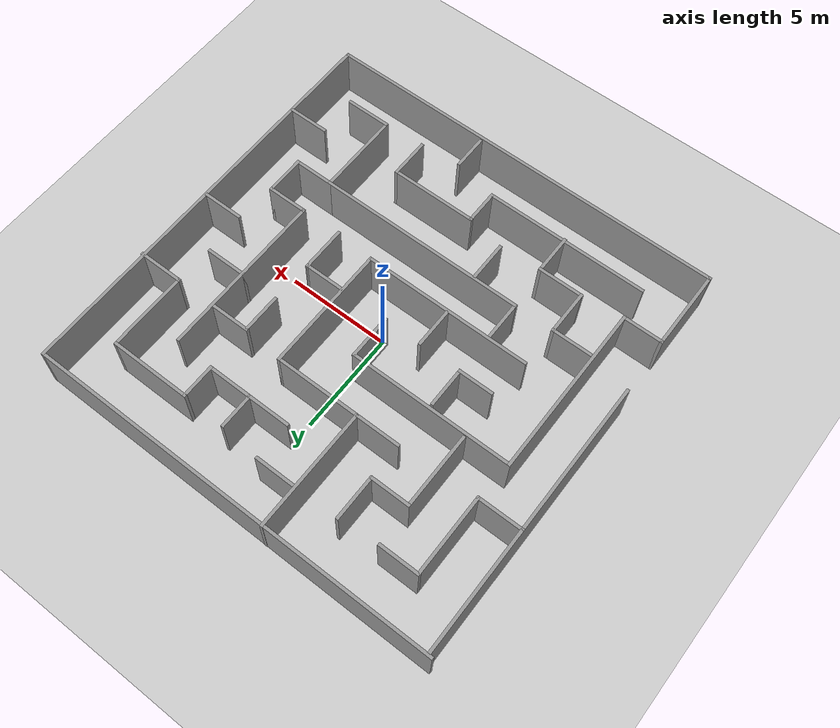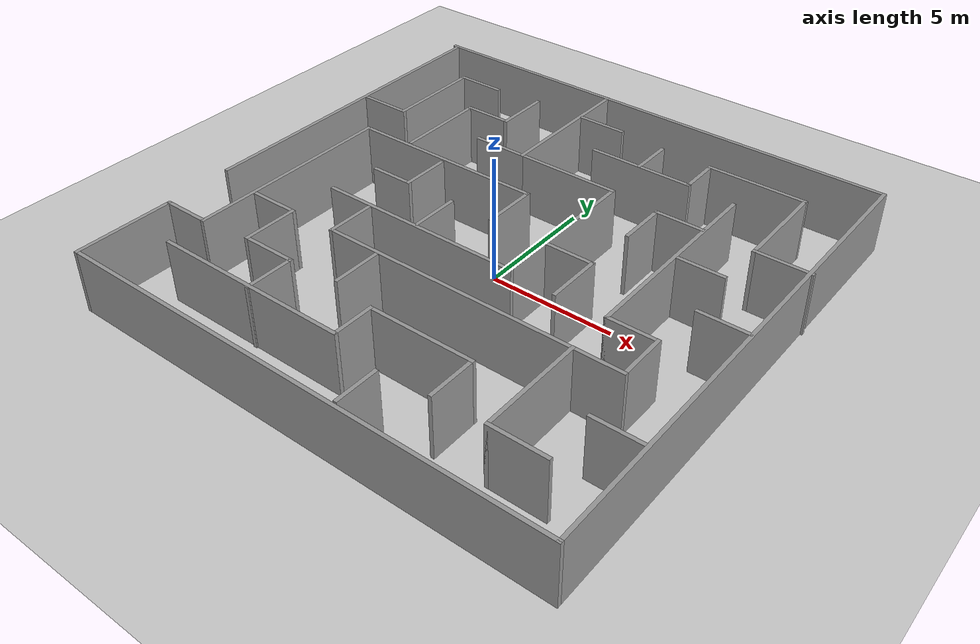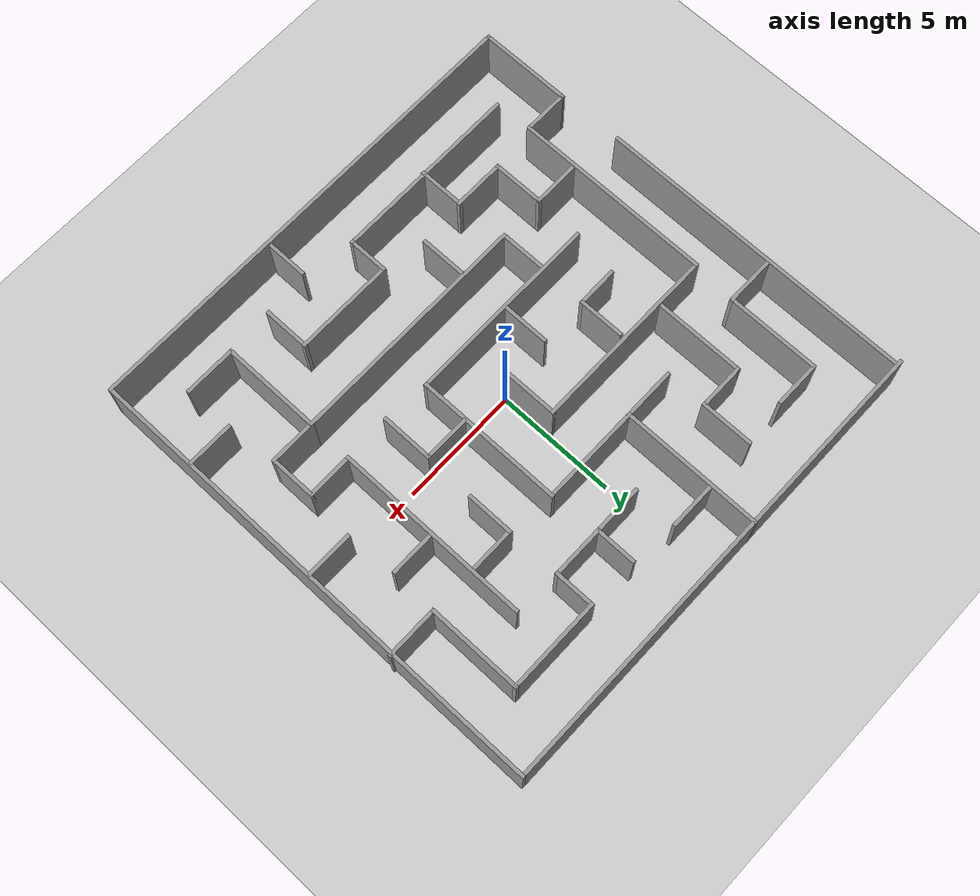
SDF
<sdf version="1.4">
   <world name="default">

     <scene>
       <ambient>0.4 0.4 0.4 1</ambient>
       <background>0.7 0.7 0.7 1</background>
       <shadows>true</shadows>
     </scene>

     <!-- A global light source -->
     <include>
       <uri>model://sun</uri>
     </include>

     <!-- A ground plane -->
     <include>
       <uri>model://ground_plane</uri>
     </include>

     <!-- Maze -->
     <include>
       <uri>model://complex_maze4</uri>
     </include>

     <physics type="ode">
       <real_time_update_rate>1000.0</real_time_update_rate>
       <max_step_size>0.001</max_step_size>
       <real_time_factor>1</real_time_factor>
       <ode>
         <solver>
           <type>quick</type>
           <iters>150</iters>
           <precon_iters>0</precon_iters>
           <sor>1.400000</sor>
           <use_dynamic_moi_rescaling>1</use_dynamic_moi_rescaling>
         </solver>
         <constraints>
           <cfm>0.00001</cfm>
           <erp>0.2</erp>
           <contact_max_correcting_vel>2000.000000</contact_max_correcting_vel>
           <contact_surface_layer>0.01000</contact_surface_layer>
         </constraints>
       </ode>
     </physics>

   </world>

 </sdf>

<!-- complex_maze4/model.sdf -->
<sdf version='1.7'>
  <model name='Untitled'>
    <pose>-0.041824 -0.00141 0 0 -0 0</pose>
    <link name='Wall_0'>
      <collision name='Wall_0_Collision'>
        <geometry>
          <box>
            <size>20.25 0.15 2.5</size>
          </box>
        </geometry>
        <pose>0 0 1.25 0 -0 0</pose>
      </collision>
      <visual name='Wall_0_Visual'>
        <pose>0 0 1.25 0 -0 0</pose>
        <geometry>
          <box>
            <size>20.25 0.15 2.5</size>
          </box>
        </geometry>
        <material>
          <script>
            <uri>file://media/materials/scripts/gazebo.material</uri>
            <name>Gazebo/Grey</name>
          </script>
          <ambient>1 1 1 1</ambient>
        </material>
        <meta>
          <layer>0</layer>
        </meta>
      </visual>
      <pose>-0.035221 10.0428 0 0 -0 0</pose>
    </link>
    <link name='Wall_1'>
      <collision name='Wall_1_Collision'>
        <geometry>
          <box>
            <size>20.25 0.15 2.5</size>
          </box>
        </geometry>
        <pose>0 0 1.25 0 -0 0</pose>
      </collision>
      <visual name='Wall_1_Visual'>
        <pose>0 0 1.25 0 -0 0</pose>
        <geometry>
          <box>
            <size>20.25 0.15 2.5</size>
          </box>
        </geometry>
        <material>
          <script>
            <uri>file://media/materials/scripts/gazebo.material</uri>
            <name>Gazebo/Grey</name>
          </script>
          <ambient>1 1 1 1</ambient>
        </material>
        <meta>
          <layer>0</layer>
        </meta>
      </visual>
      <pose>10.0148 -0.007195 0 0 -0 -1.5708</pose>
    </link>
    <link name='Wall_100'>
      <collision name='Wall_100_Collision'>
        <geometry>
          <box>
            <size>2.25 0.15 2.5</size>
          </box>
        </geometry>
        <pose>0 0 1.25 0 -0 0</pose>
      </collision>
      <visual name='Wall_100_Visual'>
        <pose>0 0 1.25 0 -0 0</pose>
        <geometry>
          <box>
            <size>2.25 0.15 2.5</size>
          </box>
        </geometry>
        <material>
          <script>
            <uri>file://media/materials/scripts/gazebo.material</uri>
            <name>Gazebo/Grey</name>
          </script>
          <ambient>1 1 1 1</ambient>
        </material>
        <meta>
          <layer>0</layer>
        </meta>
      </visual>
      <pose>-8.8738 4.01606 0 0 -0 3.14159</pose>
    </link>
    <link name='Wall_102'>
      <collision name='Wall_102_Collision'>
        <geometry>
          <box>
            <size>2 0.15 2.5</size>
          </box>
        </geometry>
        <pose>0 0 1.25 0 -0 0</pose>
      </collision>
      <visual name='Wall_102_Visual'>
        <pose>0 0 1.25 0 -0 0</pose>
        <geometry>
          <box>
            <size>2 0.15 2.5</size>
          </box>
        </geometry>
        <material>
          <script>
            <uri>file://media/materials/scripts/gazebo.material</uri>
            <name>Gazebo/Grey</name>
          </script>
          <ambient>1 1 1 1</ambient>
        </material>
        <meta>
          <layer>0</layer>
        </meta>
      </visual>
      <pose>-4.0198 0.985995 0 0 -0 -1.5708</pose>
    </link>
    <link name='Wall_103'>
      <collision name='Wall_103_Collision'>
        <geometry>
          <box>
            <size>1.75 0.15 2.5</size>
          </box>
        </geometry>
        <pose>0 0 1.25 0 -0 0</pose>
      </collision>
      <visual name='Wall_103_Visual'>
        <pose>0 0 1.25 0 -0 0</pose>
        <geometry>
          <box>
            <size>1.75 0.15 2.5</size>
          </box>
        </geometry>
        <material>
          <script>
            <uri>file://media/materials/scripts/gazebo.material</uri>
            <name>Gazebo/Grey</name>
          </script>
          <ambient>1 1 1 1</ambient>
        </material>
        <meta>
          <layer>0</layer>
        </meta>
      </visual>
      <pose>-4.8198 0.060995 0 0 -0 3.14159</pose>
    </link>
    <link name='Wall_105'>
      <collision name='Wall_105_Collision'>
        <geometry>
          <box>
            <size>1.75 0.15 2.5</size>
          </box>
        </geometry>
        <pose>0 0 1.25 0 -0 0</pose>
      </collision>
      <visual name='Wall_105_Visual'>
        <pose>0 0 1.25 0 -0 0</pose>
        <geometry>
          <box>
            <size>1.75 0.15 2.5</size>
          </box>
        </geometry>
        <material>
          <script>
            <uri>file://media/materials/scripts/gazebo.material</uri>
            <name>Gazebo/Grey</name>
          </script>
          <ambient>1 1 1 1</ambient>
        </material>
        <meta>
          <layer>0</layer>
        </meta>
      </visual>
      <pose>2.12136 -9.05955 0 0 -0 1.5708</pose>
    </link>
    <link name='Wall_12'>
      <collision name='Wall_12_Collision'>
        <geometry>
          <box>
            <size>2.25 0.15 2.5</size>
          </box>
        </geometry>
        <pose>0 0 1.25 0 -0 0</pose>
      </collision>
      <visual name='Wall_12_Visual'>
        <pose>0 0 1.25 0 -0 0</pose>
        <geometry>
          <box>
            <size>2.25 0.15 2.5</size>
          </box>
        </geometry>
        <material>
          <script>
            <uri>file://media/materials/scripts/gazebo.material</uri>
            <name>Gazebo/Grey</name>
          </script>
          <ambient>1 1 1 1</ambient>
        </material>
        <meta>
          <layer>0</layer>
        </meta>
      </visual>
      <pose>9.03522 3.99702 0 0 -0 3.14159</pose>
    </link>
    <link name='Wall_13'>
      <collision name='Wall_13_Collision'>
        <geometry>
          <box>
            <size>4 0.15 2.5</size>
          </box>
        </geometry>
        <pose>0 0 1.25 0 -0 0</pose>
      </collision>
      <visual name='Wall_13_Visual'>
        <pose>0 0 1.25 0 -0 0</pose>
        <geometry>
          <box>
            <size>4 0.15 2.5</size>
          </box>
        </geometry>
        <material>
          <script>
            <uri>file://media/materials/scripts/gazebo.material</uri>
            <name>Gazebo/Grey</name>
          </script>
          <ambient>1 1 1 1</ambient>
        </material>
        <meta>
          <layer>0</layer>
        </meta>
      </visual>
      <pose>7.98522 5.92202 0 0 -0 1.5708</pose>
    </link>
    <link name='Wall_14'>
      <collision name='Wall_14_Collision'>
        <geometry>
          <box>
            <size>4 0.15 2.5</size>
          </box>
        </geometry>
        <pose>0 0 1.25 0 -0 0</pose>
      </collision>
      <visual name='Wall_14_Visual'>
        <pose>0 0 1.25 0 -0 0</pose>
        <geometry>
          <box>
            <size>4 0.15 2.5</size>
          </box>
        </geometry>
        <material>
          <script>
            <uri>file://media/materials/scripts/gazebo.material</uri>
            <name>Gazebo/Grey</name>
          </script>
          <ambient>1 1 1 1</ambient>
        </material>
        <meta>
          <layer>0</layer>
        </meta>
      </visual>
      <pose>6.06022 7.84702 0 0 -0 3.14159</pose>
    </link>
    <link name='Wall_15'>
      <collision name='Wall_15_Collision'>
        <geometry>
          <box>
            <size>1.75 0.15 2.5</size>
          </box>
        </geometry>
        <pose>0 0 1.25 0 -0 0</pose>
      </collision>
      <visual name='Wall_15_Visual'>
        <pose>0 0 1.25 0 -0 0</pose>
        <geometry>
          <box>
            <size>1.75 0.15 2.5</size>
          </box>
        </geometry>
        <material>
          <script>
            <uri>file://media/materials/scripts/gazebo.material</uri>
            <name>Gazebo/Grey</name>
          </script>
          <ambient>1 1 1 1</ambient>
        </material>
        <meta>
          <layer>0</layer>
        </meta>
      </visual>
      <pose>4.13522 7.04702 0 0 -0 -1.5708</pose>
    </link>
    <link name='Wall_16'>
      <collision name='Wall_16_Collision'>
        <geometry>
          <box>
            <size>4.25 0.15 2.5</size>
          </box>
        </geometry>
        <pose>0 0 1.25 0 -0 0</pose>
      </collision>
      <visual name='Wall_16_Visual'>
        <pose>0 0 1.25 0 -0 0</pose>
        <geometry>
          <box>
            <size>4.25 0.15 2.5</size>
          </box>
        </geometry>
        <material>
          <script>
            <uri>file://media/materials/scripts/gazebo.material</uri>
            <name>Gazebo/Grey</name>
          </script>
          <ambient>1 1 1 1</ambient>
        </material>
        <meta>
          <layer>0</layer>
        </meta>
      </visual>
      <pose>2.08522 6.24702 0 0 -0 3.14159</pose>
    </link>
    <link name='Wall_2'>
      <collision name='Wall_2_Collision'>
        <geometry>
          <box>
            <size>20 0.15 2.5</size>
          </box>
        </geometry>
        <pose>0 0 1.25 0 -0 0</pose>
      </collision>
      <visual name='Wall_2_Visual'>
        <pose>0 0 1.25 0 -0 0</pose>
        <geometry>
          <box>
            <size>20 0.15 2.5</size>
          </box>
        </geometry>
        <material>
          <script>
            <uri>file://media/materials/scripts/gazebo.material</uri>
            <name>Gazebo/Grey</name>
          </script>
          <ambient>1 1 1 1</ambient>
        </material>
        <meta>
          <layer>0</layer>
        </meta>
      </visual>
      <pose>0.089779 -10.0572 0 0 -0 3.14159</pose>
    </link>
    <link name='Wall_23'>
      <collision name='Wall_23_Collision'>
        <geometry>
          <box>
            <size>1.75 0.15 2.5</size>
          </box>
        </geometry>
        <pose>0 0 1.25 0 -0 0</pose>
      </collision>
      <visual name='Wall_23_Visual'>
        <pose>0 0 1.25 0 -0 0</pose>
        <geometry>
          <box>
            <size>1.75 0.15 2.5</size>
          </box>
        </geometry>
        <material>
          <script>
            <uri>file://media/materials/scripts/gazebo.material</uri>
            <name>Gazebo/Grey</name>
          </script>
          <ambient>1 1 1 1</ambient>
        </material>
        <meta>
          <layer>0</layer>
        </meta>
      </visual>
      <pose>2.0237 7.06909 0 0 -0 1.5708</pose>
    </link>
    <link name='Wall_25'>
      <collision name='Wall_25_Collision'>
        <geometry>
          <box>
            <size>6 0.15 2.5</size>
          </box>
        </geometry>
        <pose>0 0 1.25 0 -0 0</pose>
      </collision>
      <visual name='Wall_25_Visual'>
        <pose>0 0 1.25 0 -0 0</pose>
        <geometry>
          <box>
            <size>6 0.15 2.5</size>
          </box>
        </geometry>
        <material>
          <script>
            <uri>file://media/materials/scripts/gazebo.material</uri>
            <name>Gazebo/Grey</name>
          </script>
          <ambient>1 1 1 1</ambient>
        </material>
        <meta>
          <layer>0</layer>
        </meta>
      </visual>
      <pose>-1.91893 7.1322 0 0 -0 -1.5708</pose>
    </link>
    <link name='Wall_26'>
      <collision name='Wall_26_Collision'>
        <geometry>
          <box>
            <size>2.25 0.15 2.5</size>
          </box>
        </geometry>
        <pose>0 0 1.25 0 -0 0</pose>
      </collision>
      <visual name='Wall_26_Visual'>
        <pose>0 0 1.25 0 -0 0</pose>
        <geometry>
          <box>
            <size>2.25 0.15 2.5</size>
          </box>
        </geometry>
        <material>
          <script>
            <uri>file://media/materials/scripts/gazebo.material</uri>
            <name>Gazebo/Grey</name>
          </script>
          <ambient>1 1 1 1</ambient>
        </material>
        <meta>
          <layer>0</layer>
        </meta>
      </visual>
      <pose>-2.96893 4.2072 0 0 -0 3.14159</pose>
    </link>
    <link name='Wall_28'>
      <collision name='Wall_28_Collision'>
        <geometry>
          <box>
            <size>4.25 0.15 2.5</size>
          </box>
        </geometry>
        <pose>0 0 1.25 0 -0 0</pose>
      </collision>
      <visual name='Wall_28_Visual'>
        <pose>0 0 1.25 0 -0 0</pose>
        <geometry>
          <box>
            <size>4.25 0.15 2.5</size>
          </box>
        </geometry>
        <material>
          <script>
            <uri>file://media/materials/scripts/gazebo.material</uri>
            <name>Gazebo/Grey</name>
          </script>
          <ambient>1 1 1 1</ambient>
        </material>
        <meta>
          <layer>0</layer>
        </meta>
      </visual>
      <pose>0.131069 4.2072 0 0 -0 0</pose>
    </link>
    <link name='Wall_29'>
      <collision name='Wall_29_Collision'>
        <geometry>
          <box>
            <size>6.25 0.15 2.5</size>
          </box>
        </geometry>
        <pose>0 0 1.25 0 -0 0</pose>
      </collision>
      <visual name='Wall_29_Visual'>
        <pose>0 0 1.25 0 -0 0</pose>
        <geometry>
          <box>
            <size>6.25 0.15 2.5</size>
          </box>
        </geometry>
        <material>
          <script>
            <uri>file://media/materials/scripts/gazebo.material</uri>
            <name>Gazebo/Grey</name>
          </script>
          <ambient>1 1 1 1</ambient>
        </material>
        <meta>
          <layer>0</layer>
        </meta>
      </visual>
      <pose>2.18107 1.1572 0 0 -0 -1.5708</pose>
    </link>
    <link name='Wall_3'>
      <collision name='Wall_3_Collision'>
        <geometry>
          <box>
            <size>4 0.15 2.5</size>
          </box>
        </geometry>
        <pose>0 0 1.25 0 -0 0</pose>
      </collision>
      <visual name='Wall_3_Visual'>
        <pose>0 0 1.25 0 -0 0</pose>
        <geometry>
          <box>
            <size>4 0.15 2.5</size>
          </box>
        </geometry>
        <material>
          <script>
            <uri>file://media/materials/scripts/gazebo.material</uri>
            <name>Gazebo/Grey</name>
          </script>
          <ambient>1 1 1 1</ambient>
        </material>
        <meta>
          <layer>0</layer>
        </meta>
      </visual>
      <pose>-9.83522 -8.13219 0 0 -0 1.5708</pose>
    </link>
    <link name='Wall_30'>
      <collision name='Wall_30_Collision'>
        <geometry>
          <box>
            <size>8.25 0.15 2.5</size>
          </box>
        </geometry>
        <pose>0 0 1.25 0 -0 0</pose>
      </collision>
      <visual name='Wall_30_Visual'>
        <pose>0 0 1.25 0 -0 0</pose>
        <geometry>
          <box>
            <size>8.25 0.15 2.5</size>
          </box>
        </geometry>
        <material>
          <script>
            <uri>file://media/materials/scripts/gazebo.material</uri>
            <name>Gazebo/Grey</name>
          </script>
          <ambient>1 1 1 1</ambient>
        </material>
        <meta>
          <layer>0</layer>
        </meta>
      </visual>
      <pose>-1.86893 -1.8928 0 0 -0 3.14159</pose>
    </link>
    <link name='Wall_32'>
      <collision name='Wall_32_Collision'>
        <geometry>
          <box>
            <size>2 0.15 2.5</size>
          </box>
        </geometry>
        <pose>0 0 1.25 0 -0 0</pose>
      </collision>
      <visual name='Wall_32_Visual'>
        <pose>0 0 1.25 0 -0 0</pose>
        <geometry>
          <box>
            <size>2 0.15 2.5</size>
          </box>
        </geometry>
        <material>
          <script>
            <uri>file://media/materials/scripts/gazebo.material</uri>
            <name>Gazebo/Grey</name>
          </script>
          <ambient>1 1 1 1</ambient>
        </material>
        <meta>
          <layer>0</layer>
        </meta>
      </visual>
      <pose>-1.97243 -0.872772 0 0 -0 -1.5708</pose>
    </link>
    <link name='Wall_34'>
      <collision name='Wall_34_Collision'>
        <geometry>
          <box>
            <size>2 0.15 2.5</size>
          </box>
        </geometry>
        <pose>0 0 1.25 0 -0 0</pose>
      </collision>
      <visual name='Wall_34_Visual'>
        <pose>0 0 1.25 0 -0 0</pose>
        <geometry>
          <box>
            <size>2 0.15 2.5</size>
          </box>
        </geometry>
        <material>
          <script>
            <uri>file://media/materials/scripts/gazebo.material</uri>
            <name>Gazebo/Grey</name>
          </script>
          <ambient>1 1 1 1</ambient>
        </material>
        <meta>
          <layer>0</layer>
        </meta>
      </visual>
      <pose>-0.886926 8.0776 0 0 -0 0</pose>
    </link>
    <link name='Wall_36'>
      <collision name='Wall_36_Collision'>
        <geometry>
          <box>
            <size>2 0.15 2.5</size>
          </box>
        </geometry>
        <pose>0 0 1.25 0 -0 0</pose>
      </collision>
      <visual name='Wall_36_Visual'>
        <pose>0 0 1.25 0 -0 0</pose>
        <geometry>
          <box>
            <size>2 0.15 2.5</size>
          </box>
        </geometry>
        <material>
          <script>
            <uri>file://media/materials/scripts/gazebo.material</uri>
            <name>Gazebo/Grey</name>
          </script>
          <ambient>1 1 1 1</ambient>
        </material>
        <meta>
          <layer>0</layer>
        </meta>
      </visual>
      <pose>3.17926 0.052228 0 0 -0 0</pose>
    </link>
    <link name='Wall_37'>
      <collision name='Wall_37_Collision'>
        <geometry>
          <box>
            <size>2.25 0.15 2.5</size>
          </box>
        </geometry>
        <pose>0 0 1.25 0 -0 0</pose>
      </collision>
      <visual name='Wall_37_Visual'>
        <pose>0 0 1.25 0 -0 0</pose>
        <geometry>
          <box>
            <size>2.25 0.15 2.5</size>
          </box>
        </geometry>
        <material>
          <script>
            <uri>file://media/materials/scripts/gazebo.material</uri>
            <name>Gazebo/Grey</name>
          </script>
          <ambient>1 1 1 1</ambient>
        </material>
        <meta>
          <layer>0</layer>
        </meta>
      </visual>
      <pose>4.10426 -0.997772 0 0 -0 -1.5708</pose>
    </link>
    <link name='Wall_39'>
      <collision name='Wall_39_Collision'>
        <geometry>
          <box>
            <size>2 0.15 2.5</size>
          </box>
        </geometry>
        <pose>0 0 1.25 0 -0 0</pose>
      </collision>
      <visual name='Wall_39_Visual'>
        <pose>0 0 1.25 0 -0 0</pose>
        <geometry>
          <box>
            <size>2 0.15 2.5</size>
          </box>
        </geometry>
        <material>
          <script>
            <uri>file://media/materials/scripts/gazebo.material</uri>
            <name>Gazebo/Grey</name>
          </script>
          <ambient>1 1 1 1</ambient>
        </material>
        <meta>
          <layer>0</layer>
        </meta>
      </visual>
      <pose>-1.97243 -0.872772 0 0 -0 -1.5708</pose>
    </link>
    <link name='Wall_42'>
      <collision name='Wall_42_Collision'>
        <geometry>
          <box>
            <size>8.25 0.15 2.5</size>
          </box>
        </geometry>
        <pose>0 0 1.25 0 -0 0</pose>
      </collision>
      <visual name='Wall_42_Visual'>
        <pose>0 0 1.25 0 -0 0</pose>
        <geometry>
          <box>
            <size>8.25 0.15 2.5</size>
          </box>
        </geometry>
        <material>
          <script>
            <uri>file://media/materials/scripts/gazebo.material</uri>
            <name>Gazebo/Grey</name>
          </script>
          <ambient>1 1 1 1</ambient>
        </material>
        <meta>
          <layer>0</layer>
        </meta>
      </visual>
      <pose>6.05294 2.04801 0 0 -0 -1.5708</pose>
    </link>
    <link name='Wall_43'>
      <collision name='Wall_43_Collision'>
        <geometry>
          <box>
            <size>2 0.15 2.5</size>
          </box>
        </geometry>
        <pose>0 0 1.25 0 -0 0</pose>
      </collision>
      <visual name='Wall_43_Visual'>
        <pose>0 0 1.25 0 -0 0</pose>
        <geometry>
          <box>
            <size>2 0.15 2.5</size>
          </box>
        </geometry>
        <material>
          <script>
            <uri>file://media/materials/scripts/gazebo.material</uri>
            <name>Gazebo/Grey</name>
          </script>
          <ambient>1 1 1 1</ambient>
        </material>
        <meta>
          <layer>0</layer>
        </meta>
      </visual>
      <pose>6.97794 -2.00199 0 0 -0 0</pose>
    </link>
    <link name='Wall_44'>
      <collision name='Wall_44_Collision'>
        <geometry>
          <box>
            <size>2 0.15 2.5</size>
          </box>
        </geometry>
        <pose>0 0 1.25 0 -0 0</pose>
      </collision>
      <visual name='Wall_44_Visual'>
        <pose>0 0 1.25 0 -0 0</pose>
        <geometry>
          <box>
            <size>2 0.15 2.5</size>
          </box>
        </geometry>
        <material>
          <script>
            <uri>file://media/materials/scripts/gazebo.material</uri>
            <name>Gazebo/Grey</name>
          </script>
          <ambient>1 1 1 1</ambient>
        </material>
        <meta>
          <layer>0</layer>
        </meta>
      </visual>
      <pose>7.90294 -2.92699 0 0 -0 -1.5708</pose>
    </link>
    <link name='Wall_45'>
      <collision name='Wall_45_Collision'>
        <geometry>
          <box>
            <size>2 0.15 2.5</size>
          </box>
        </geometry>
        <pose>0 0 1.25 0 -0 0</pose>
      </collision>
      <visual name='Wall_45_Visual'>
        <pose>0 0 1.25 0 -0 0</pose>
        <geometry>
          <box>
            <size>2 0.15 2.5</size>
          </box>
        </geometry>
        <material>
          <script>
            <uri>file://media/materials/scripts/gazebo.material</uri>
            <name>Gazebo/Grey</name>
          </script>
          <ambient>1 1 1 1</ambient>
        </material>
        <meta>
          <layer>0</layer>
        </meta>
      </visual>
      <pose>6.97794 -3.85199 0 0 -0 3.14159</pose>
    </link>
    <link name='Wall_46'>
      <collision name='Wall_46_Collision'>
        <geometry>
          <box>
            <size>4.25 0.15 2.5</size>
          </box>
        </geometry>
        <pose>0 0 1.25 0 -0 0</pose>
      </collision>
      <visual name='Wall_46_Visual'>
        <pose>0 0 1.25 0 -0 0</pose>
        <geometry>
          <box>
            <size>4.25 0.15 2.5</size>
          </box>
        </geometry>
        <material>
          <script>
            <uri>file://media/materials/scripts/gazebo.material</uri>
            <name>Gazebo/Grey</name>
          </script>
          <ambient>1 1 1 1</ambient>
        </material>
        <meta>
          <layer>0</layer>
        </meta>
      </visual>
      <pose>6.05294 -5.90199 0 0 -0 -1.5708</pose>
    </link>
    <link name='Wall_47'>
      <collision name='Wall_47_Collision'>
        <geometry>
          <box>
            <size>2.25 0.15 2.5</size>
          </box>
        </geometry>
        <pose>0 0 1.25 0 -0 0</pose>
      </collision>
      <visual name='Wall_47_Visual'>
        <pose>0 0 1.25 0 -0 0</pose>
        <geometry>
          <box>
            <size>2.25 0.15 2.5</size>
          </box>
        </geometry>
        <material>
          <script>
            <uri>file://media/materials/scripts/gazebo.material</uri>
            <name>Gazebo/Grey</name>
          </script>
          <ambient>1 1 1 1</ambient>
        </material>
        <meta>
          <layer>0</layer>
        </meta>
      </visual>
      <pose>7.10294 -7.95199 0 0 -0 0</pose>
    </link>
    <link name='Wall_49'>
      <collision name='Wall_49_Collision'>
        <geometry>
          <box>
            <size>2 0.15 2.5</size>
          </box>
        </geometry>
        <pose>0 0 1.25 0 -0 0</pose>
      </collision>
      <visual name='Wall_49_Visual'>
        <pose>0 0 1.25 0 -0 0</pose>
        <geometry>
          <box>
            <size>2 0.15 2.5</size>
          </box>
        </geometry>
        <material>
          <script>
            <uri>file://media/materials/scripts/gazebo.material</uri>
            <name>Gazebo/Grey</name>
          </script>
          <ambient>1 1 1 1</ambient>
        </material>
        <meta>
          <layer>0</layer>
        </meta>
      </visual>
      <pose>9.03362 -5.94005 0 0 -0 3.14159</pose>
    </link>
    <link name='Wall_5'>
      <collision name='Wall_5_Collision'>
        <geometry>
          <box>
            <size>13.5 0.15 2.5</size>
          </box>
        </geometry>
        <pose>0 0 1.25 0 -0 0</pose>
      </collision>
      <visual name='Wall_5_Visual'>
        <pose>0 0 1.25 0 -0 0</pose>
        <geometry>
          <box>
            <size>13.5 0.15 2.5</size>
          </box>
        </geometry>
        <material>
          <script>
            <uri>file://media/materials/scripts/gazebo.material</uri>
            <name>Gazebo/Grey</name>
          </script>
          <ambient>1 1 1 1</ambient>
        </material>
        <meta>
          <layer>0</layer>
        </meta>
      </visual>
      <pose>-9.92471 3.23517 0 0 -0 1.5708</pose>
    </link>
    <link name='Wall_51'>
      <collision name='Wall_51_Collision'>
        <geometry>
          <box>
            <size>2 0.15 2.5</size>
          </box>
        </geometry>
        <pose>0 0 1.25 0 -0 0</pose>
      </collision>
      <visual name='Wall_51_Visual'>
        <pose>0 0 1.25 0 -0 0</pose>
        <geometry>
          <box>
            <size>2 0.15 2.5</size>
          </box>
        </geometry>
        <material>
          <script>
            <uri>file://media/materials/scripts/gazebo.material</uri>
            <name>Gazebo/Grey</name>
          </script>
          <ambient>1 1 1 1</ambient>
        </material>
        <meta>
          <layer>0</layer>
        </meta>
      </visual>
      <pose>9.03362 -0.001274 0 0 -0 3.14159</pose>
    </link>
    <link name='Wall_54'>
      <collision name='Wall_54_Collision'>
        <geometry>
          <box>
            <size>2 0.15 2.5</size>
          </box>
        </geometry>
        <pose>0 0 1.25 0 -0 0</pose>
      </collision>
      <visual name='Wall_54_Visual'>
        <pose>0 0 1.25 0 -0 0</pose>
        <geometry>
          <box>
            <size>2 0.15 2.5</size>
          </box>
        </geometry>
        <material>
          <script>
            <uri>file://media/materials/scripts/gazebo.material</uri>
            <name>Gazebo/Grey</name>
          </script>
          <ambient>1 1 1 1</ambient>
        </material>
        <meta>
          <layer>0</layer>
        </meta>
      </visual>
      <pose>6.97794 2.08532 0 0 -0 0</pose>
    </link>
    <link name='Wall_56'>
      <collision name='Wall_56_Collision'>
        <geometry>
          <box>
            <size>2 0.15 2.5</size>
          </box>
        </geometry>
        <pose>0 0 1.25 0 -0 0</pose>
      </collision>
      <visual name='Wall_56_Visual'>
        <pose>0 0 1.25 0 -0 0</pose>
        <geometry>
          <box>
            <size>2 0.15 2.5</size>
          </box>
        </geometry>
        <material>
          <script>
            <uri>file://media/materials/scripts/gazebo.material</uri>
            <name>Gazebo/Grey</name>
          </script>
          <ambient>1 1 1 1</ambient>
        </material>
        <meta>
          <layer>0</layer>
        </meta>
      </visual>
      <pose>5.07444 4.01141 0 0 -0 3.14159</pose>
    </link>
    <link name='Wall_57'>
      <collision name='Wall_57_Collision'>
        <geometry>
          <box>
            <size>2 0.15 2.5</size>
          </box>
        </geometry>
        <pose>0 0 1.25 0 -0 0</pose>
      </collision>
      <visual name='Wall_57_Visual'>
        <pose>0 0 1.25 0 -0 0</pose>
        <geometry>
          <box>
            <size>2 0.15 2.5</size>
          </box>
        </geometry>
        <material>
          <script>
            <uri>file://media/materials/scripts/gazebo.material</uri>
            <name>Gazebo/Grey</name>
          </script>
          <ambient>1 1 1 1</ambient>
        </material>
        <meta>
          <layer>0</layer>
        </meta>
      </visual>
      <pose>4.14944 3.08641 0 0 -0 -1.5708</pose>
    </link>
    <link name='Wall_59'>
      <collision name='Wall_59_Collision'>
        <geometry>
          <box>
            <size>10.25 0.15 2.5</size>
          </box>
        </geometry>
        <pose>0 0 1.25 0 -0 0</pose>
      </collision>
      <visual name='Wall_59_Visual'>
        <pose>0 0 1.25 0 -0 0</pose>
        <geometry>
          <box>
            <size>10.25 0.15 2.5</size>
          </box>
        </geometry>
        <material>
          <script>
            <uri>file://media/materials/scripts/gazebo.material</uri>
            <name>Gazebo/Grey</name>
          </script>
          <ambient>1 1 1 1</ambient>
        </material>
        <meta>
          <layer>0</layer>
        </meta>
      </visual>
      <pose>1.00294 -3.85199 0 0 -0 3.14159</pose>
    </link>
    <link name='Wall_62'>
      <collision name='Wall_62_Collision'>
        <geometry>
          <box>
            <size>2 0.15 2.5</size>
          </box>
        </geometry>
        <pose>0 0 1.25 0 -0 0</pose>
      </collision>
      <visual name='Wall_62_Visual'>
        <pose>0 0 1.25 0 -0 0</pose>
        <geometry>
          <box>
            <size>2 0.15 2.5</size>
          </box>
        </geometry>
        <material>
          <script>
            <uri>file://media/materials/scripts/gazebo.material</uri>
            <name>Gazebo/Grey</name>
          </script>
          <ambient>1 1 1 1</ambient>
        </material>
        <meta>
          <layer>0</layer>
        </meta>
      </visual>
      <pose>-4.04706 -2.92699 0 0 -0 1.5708</pose>
    </link>
    <link name='Wall_64'>
      <collision name='Wall_64_Collision'>
        <geometry>
          <box>
            <size>2 0.15 2.5</size>
          </box>
        </geometry>
        <pose>0 0 1.25 0 -0 0</pose>
      </collision>
      <visual name='Wall_64_Visual'>
        <pose>0 0 1.25 0 -0 0</pose>
        <geometry>
          <box>
            <size>2 0.15 2.5</size>
          </box>
        </geometry>
        <material>
          <script>
            <uri>file://media/materials/scripts/gazebo.material</uri>
            <name>Gazebo/Grey</name>
          </script>
          <ambient>1 1 1 1</ambient>
        </material>
        <meta>
          <layer>0</layer>
        </meta>
      </visual>
      <pose>-1.86543 -4.88546 0 0 -0 -1.5708</pose>
    </link>
    <link name='Wall_66'>
      <collision name='Wall_66_Collision'>
        <geometry>
          <box>
            <size>2 0.15 2.5</size>
          </box>
        </geometry>
        <pose>0 0 1.25 0 -0 0</pose>
      </collision>
      <visual name='Wall_66_Visual'>
        <pose>0 0 1.25 0 -0 0</pose>
        <geometry>
          <box>
            <size>2 0.15 2.5</size>
          </box>
        </geometry>
        <material>
          <script>
            <uri>file://media/materials/scripts/gazebo.material</uri>
            <name>Gazebo/Grey</name>
          </script>
          <ambient>1 1 1 1</ambient>
        </material>
        <meta>
          <layer>0</layer>
        </meta>
      </visual>
      <pose>4.07335 -7.10165 0 0 -0 1.5708</pose>
    </link>
    <link name='Wall_67'>
      <collision name='Wall_67_Collision'>
        <geometry>
          <box>
            <size>4.25 0.15 2.5</size>
          </box>
        </geometry>
        <pose>0 0 1.25 0 -0 0</pose>
      </collision>
      <visual name='Wall_67_Visual'>
        <pose>0 0 1.25 0 -0 0</pose>
        <geometry>
          <box>
            <size>4.25 0.15 2.5</size>
          </box>
        </geometry>
        <material>
          <script>
            <uri>file://media/materials/scripts/gazebo.material</uri>
            <name>Gazebo/Grey</name>
          </script>
          <ambient>1 1 1 1</ambient>
        </material>
        <meta>
          <layer>0</layer>
        </meta>
      </visual>
      <pose>2.02335 -6.17665 0 0 -0 3.14159</pose>
    </link>
    <link name='Wall_68'>
      <collision name='Wall_68_Collision'>
        <geometry>
          <box>
            <size>1.75 0.15 2.5</size>
          </box>
        </geometry>
        <pose>0 0 1.25 0 -0 0</pose>
      </collision>
      <visual name='Wall_68_Visual'>
        <pose>0 0 1.25 0 -0 0</pose>
        <geometry>
          <box>
            <size>1.75 0.15 2.5</size>
          </box>
        </geometry>
        <material>
          <script>
            <uri>file://media/materials/scripts/gazebo.material</uri>
            <name>Gazebo/Grey</name>
          </script>
          <ambient>1 1 1 1</ambient>
        </material>
        <meta>
          <layer>0</layer>
        </meta>
      </visual>
      <pose>-0.026651 -6.97665 0 0 -0 -1.5708</pose>
    </link>
    <link name='Wall_69'>
      <collision name='Wall_69_Collision'>
        <geometry>
          <box>
            <size>8 0.15 2.5</size>
          </box>
        </geometry>
        <pose>0 0 1.25 0 -0 0</pose>
      </collision>
      <visual name='Wall_69_Visual'>
        <pose>0 0 1.25 0 -0 0</pose>
        <geometry>
          <box>
            <size>8 0.15 2.5</size>
          </box>
        </geometry>
        <material>
          <script>
            <uri>file://media/materials/scripts/gazebo.material</uri>
            <name>Gazebo/Grey</name>
          </script>
          <ambient>1 1 1 1</ambient>
        </material>
        <meta>
          <layer>0</layer>
        </meta>
      </visual>
      <pose>-3.95165 -7.77665 0 0 -0 3.14159</pose>
    </link>
    <link name='Wall_84'>
      <collision name='Wall_84_Collision'>
        <geometry>
          <box>
            <size>2 0.15 2.5</size>
          </box>
        </geometry>
        <pose>0 0 1.25 0 -0 0</pose>
      </collision>
      <visual name='Wall_84_Visual'>
        <pose>0 0 1.25 0 -0 0</pose>
        <geometry>
          <box>
            <size>2 0.15 2.5</size>
          </box>
        </geometry>
        <material>
          <script>
            <uri>file://media/materials/scripts/gazebo.material</uri>
            <name>Gazebo/Grey</name>
          </script>
          <ambient>1 1 1 1</ambient>
        </material>
        <meta>
          <layer>0</layer>
        </meta>
      </visual>
      <pose>-3.87427 -6.90116 0 0 -0 1.5708</pose>
    </link>
    <link name='Wall_85'>
      <collision name='Wall_85_Collision'>
        <geometry>
          <box>
            <size>2.25 0.15 2.5</size>
          </box>
        </geometry>
        <pose>0 0 1.25 0 -0 0</pose>
      </collision>
      <visual name='Wall_85_Visual'>
        <pose>0 0 1.25 0 -0 0</pose>
        <geometry>
          <box>
            <size>2.25 0.15 2.5</size>
          </box>
        </geometry>
        <material>
          <script>
            <uri>file://media/materials/scripts/gazebo.material</uri>
            <name>Gazebo/Grey</name>
          </script>
          <ambient>1 1 1 1</ambient>
        </material>
        <meta>
          <layer>0</layer>
        </meta>
      </visual>
      <pose>-4.92427 -5.97616 0 0 -0 3.14159</pose>
    </link>
    <link name='Wall_86'>
      <collision name='Wall_86_Collision'>
        <geometry>
          <box>
            <size>2.25 0.15 2.5</size>
          </box>
        </geometry>
        <pose>0 0 1.25 0 -0 0</pose>
      </collision>
      <visual name='Wall_86_Visual'>
        <pose>0 0 1.25 0 -0 0</pose>
        <geometry>
          <box>
            <size>2.25 0.15 2.5</size>
          </box>
        </geometry>
        <material>
          <script>
            <uri>file://media/materials/scripts/gazebo.material</uri>
            <name>Gazebo/Grey</name>
          </script>
          <ambient>1 1 1 1</ambient>
        </material>
        <meta>
          <layer>0</layer>
        </meta>
      </visual>
      <pose>-5.97427 -4.92616 0 0 -0 1.5708</pose>
    </link>
    <link name='Wall_87'>
      <collision name='Wall_87_Collision'>
        <geometry>
          <box>
            <size>2 0.15 2.5</size>
          </box>
        </geometry>
        <pose>0 0 1.25 0 -0 0</pose>
      </collision>
      <visual name='Wall_87_Visual'>
        <pose>0 0 1.25 0 -0 0</pose>
        <geometry>
          <box>
            <size>2 0.15 2.5</size>
          </box>
        </geometry>
        <material>
          <script>
            <uri>file://media/materials/scripts/gazebo.material</uri>
            <name>Gazebo/Grey</name>
          </script>
          <ambient>1 1 1 1</ambient>
        </material>
        <meta>
          <layer>0</layer>
        </meta>
      </visual>
      <pose>-6.89927 -3.87616 0 0 -0 3.14159</pose>
    </link>
    <link name='Wall_89'>
      <collision name='Wall_89_Collision'>
        <geometry>
          <box>
            <size>2 0.15 2.5</size>
          </box>
        </geometry>
        <pose>0 0 1.25 0 -0 0</pose>
      </collision>
      <visual name='Wall_89_Visual'>
        <pose>0 0 1.25 0 -0 0</pose>
        <geometry>
          <box>
            <size>2 0.15 2.5</size>
          </box>
        </geometry>
        <material>
          <script>
            <uri>file://media/materials/scripts/gazebo.material</uri>
            <name>Gazebo/Grey</name>
          </script>
          <ambient>1 1 1 1</ambient>
        </material>
        <meta>
          <layer>0</layer>
        </meta>
      </visual>
      <pose>-8.91022 -6.20719 0 0 -0 0</pose>
    </link>
    <link name='Wall_90'>
      <collision name='Wall_90_Collision'>
        <geometry>
          <box>
            <size>8.5 0.15 2.5</size>
          </box>
        </geometry>
        <pose>0 0 1.25 0 -0 0</pose>
      </collision>
      <visual name='Wall_90_Visual'>
        <pose>0 0 1.25 0 -0 0</pose>
        <geometry>
          <box>
            <size>8.5 0.15 2.5</size>
          </box>
        </geometry>
        <material>
          <script>
            <uri>file://media/materials/scripts/gazebo.material</uri>
            <name>Gazebo/Grey</name>
          </script>
          <ambient>1 1 1 1</ambient>
        </material>
        <meta>
          <layer>0</layer>
        </meta>
      </visual>
      <pose>-7.98522 -2.0322 0 0 -0 1.5708</pose>
    </link>
    <link name='Wall_91'>
      <collision name='Wall_91_Collision'>
        <geometry>
          <box>
            <size>8 0.15 2.5</size>
          </box>
        </geometry>
        <pose>0 0 1.25 0 -0 0</pose>
      </collision>
      <visual name='Wall_91_Visual'>
        <pose>0 0 1.25 0 -0 0</pose>
        <geometry>
          <box>
            <size>8 0.15 2.5</size>
          </box>
        </geometry>
        <material>
          <script>
            <uri>file://media/materials/scripts/gazebo.material</uri>
            <name>Gazebo/Grey</name>
          </script>
          <ambient>1 1 1 1</ambient>
        </material>
        <meta>
          <layer>0</layer>
        </meta>
      </visual>
      <pose>-4.06022 2.14281 0 0 -0 0</pose>
    </link>
    <link name='Wall_92'>
      <collision name='Wall_92_Collision'>
        <geometry>
          <box>
            <size>2.25 0.15 2.5</size>
          </box>
        </geometry>
        <pose>0 0 1.25 0 -0 0</pose>
      </collision>
      <visual name='Wall_92_Visual'>
        <pose>0 0 1.25 0 -0 0</pose>
        <geometry>
          <box>
            <size>2.25 0.15 2.5</size>
          </box>
        </geometry>
        <material>
          <script>
            <uri>file://media/materials/scripts/gazebo.material</uri>
            <name>Gazebo/Grey</name>
          </script>
          <ambient>1 1 1 1</ambient>
        </material>
        <meta>
          <layer>0</layer>
        </meta>
      </visual>
      <pose>-0.135221 1.09281 0 0 -0 -1.5708</pose>
    </link>
    <link name='Wall_94'>
      <collision name='Wall_94_Collision'>
        <geometry>
          <box>
            <size>3.75 0.15 2.5</size>
          </box>
        </geometry>
        <pose>0 0 1.25 0 -0 0</pose>
      </collision>
      <visual name='Wall_94_Visual'>
        <pose>0 0 1.25 0 -0 0</pose>
        <geometry>
          <box>
            <size>3.75 0.15 2.5</size>
          </box>
        </geometry>
        <material>
          <script>
            <uri>file://media/materials/scripts/gazebo.material</uri>
            <name>Gazebo/Grey</name>
          </script>
          <ambient>1 1 1 1</ambient>
        </material>
        <meta>
          <layer>0</layer>
        </meta>
      </visual>
      <pose>-5.88075 4.12971 0 0 -0 1.5708</pose>
    </link>
    <link name='Wall_95'>
      <collision name='Wall_95_Collision'>
        <geometry>
          <box>
            <size>2 0.15 2.5</size>
          </box>
        </geometry>
        <pose>0 0 1.25 0 -0 0</pose>
      </collision>
      <visual name='Wall_95_Visual'>
        <pose>0 0 1.25 0 -0 0</pose>
        <geometry>
          <box>
            <size>2 0.15 2.5</size>
          </box>
        </geometry>
        <material>
          <script>
            <uri>file://media/materials/scripts/gazebo.material</uri>
            <name>Gazebo/Grey</name>
          </script>
          <ambient>1 1 1 1</ambient>
        </material>
        <meta>
          <layer>0</layer>
        </meta>
      </visual>
      <pose>-4.95575 5.92971 0 0 -0 0</pose>
    </link>
    <link name='Wall_96'>
      <collision name='Wall_96_Collision'>
        <geometry>
          <box>
            <size>2.25 0.15 2.5</size>
          </box>
        </geometry>
        <pose>0 0 1.25 0 -0 0</pose>
      </collision>
      <visual name='Wall_96_Visual'>
        <pose>0 0 1.25 0 -0 0</pose>
        <geometry>
          <box>
            <size>2.25 0.15 2.5</size>
          </box>
        </geometry>
        <material>
          <script>
            <uri>file://media/materials/scripts/gazebo.material</uri>
            <name>Gazebo/Grey</name>
          </script>
          <ambient>1 1 1 1</ambient>
        </material>
        <meta>
          <layer>0</layer>
        </meta>
      </visual>
      <pose>-4.03075 6.97971 0 0 -0 1.5708</pose>
    </link>
    <link name='Wall_98'>
      <collision name='Wall_98_Collision'>
        <geometry>
          <box>
            <size>2 0.15 2.5</size>
          </box>
        </geometry>
        <pose>0 0 1.25 0 -0 0</pose>
      </collision>
      <visual name='Wall_98_Visual'>
        <pose>0 0 1.25 0 -0 0</pose>
        <geometry>
          <box>
            <size>2 0.15 2.5</size>
          </box>
        </geometry>
        <material>
          <script>
            <uri>file://media/materials/scripts/gazebo.material</uri>
            <name>Gazebo/Grey</name>
          </script>
          <ambient>1 1 1 1</ambient>
        </material>
        <meta>
          <layer>0</layer>
        </meta>
      </visual>
      <pose>-6.8988 7.86606 0 0 -0 3.14159</pose>
    </link>
    <link name='Wall_99'>
      <collision name='Wall_99_Collision'>
        <geometry>
          <box>
            <size>4 0.15 2.5</size>
          </box>
        </geometry>
        <pose>0 0 1.25 0 -0 0</pose>
      </collision>
      <visual name='Wall_99_Visual'>
        <pose>0 0 1.25 0 -0 0</pose>
        <geometry>
          <box>
            <size>4 0.15 2.5</size>
          </box>
        </geometry>
        <material>
          <script>
            <uri>file://media/materials/scripts/gazebo.material</uri>
            <name>Gazebo/Grey</name>
          </script>
          <ambient>1 1 1 1</ambient>
        </material>
        <meta>
          <layer>0</layer>
        </meta>
      </visual>
      <pose>-7.8238 5.94106 0 0 -0 -1.5708</pose>
    </link>
    <static>1</static>
  </model>
</sdf>
